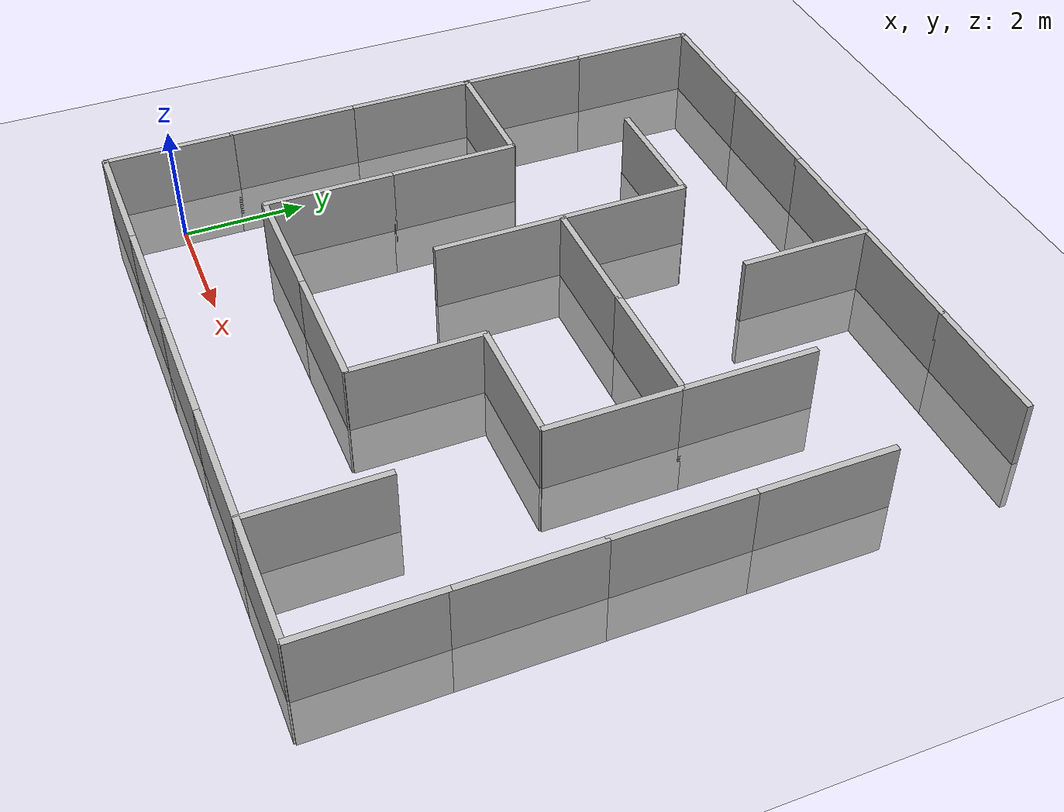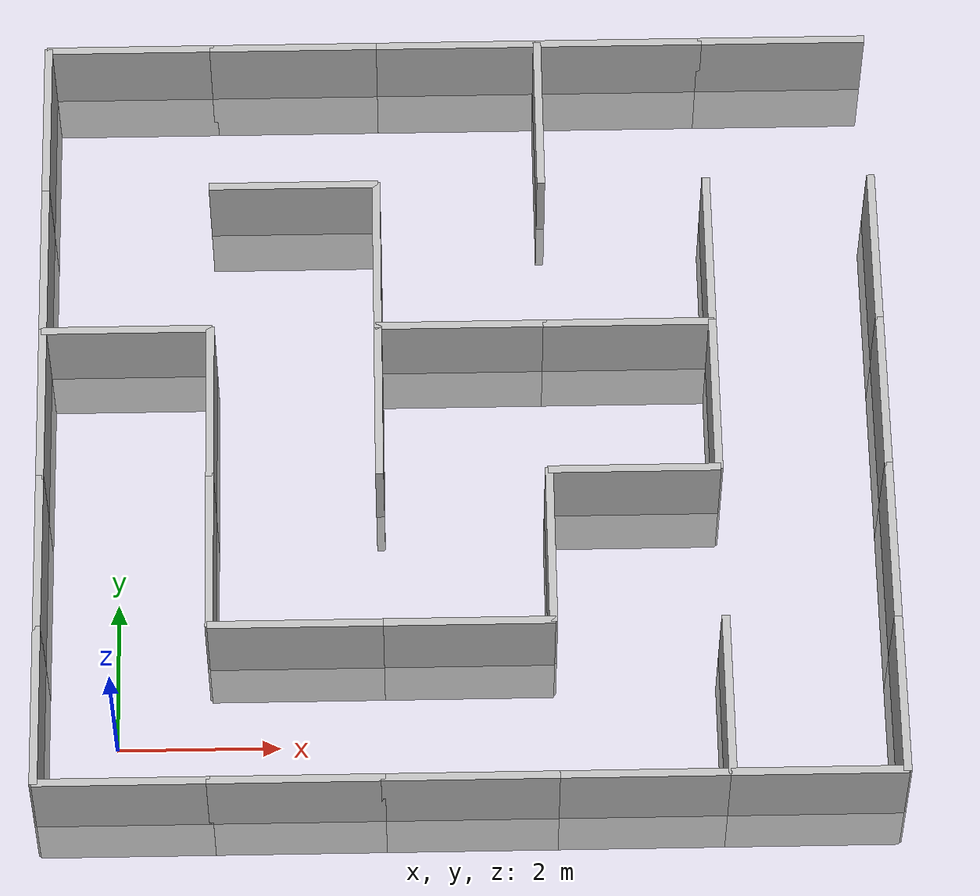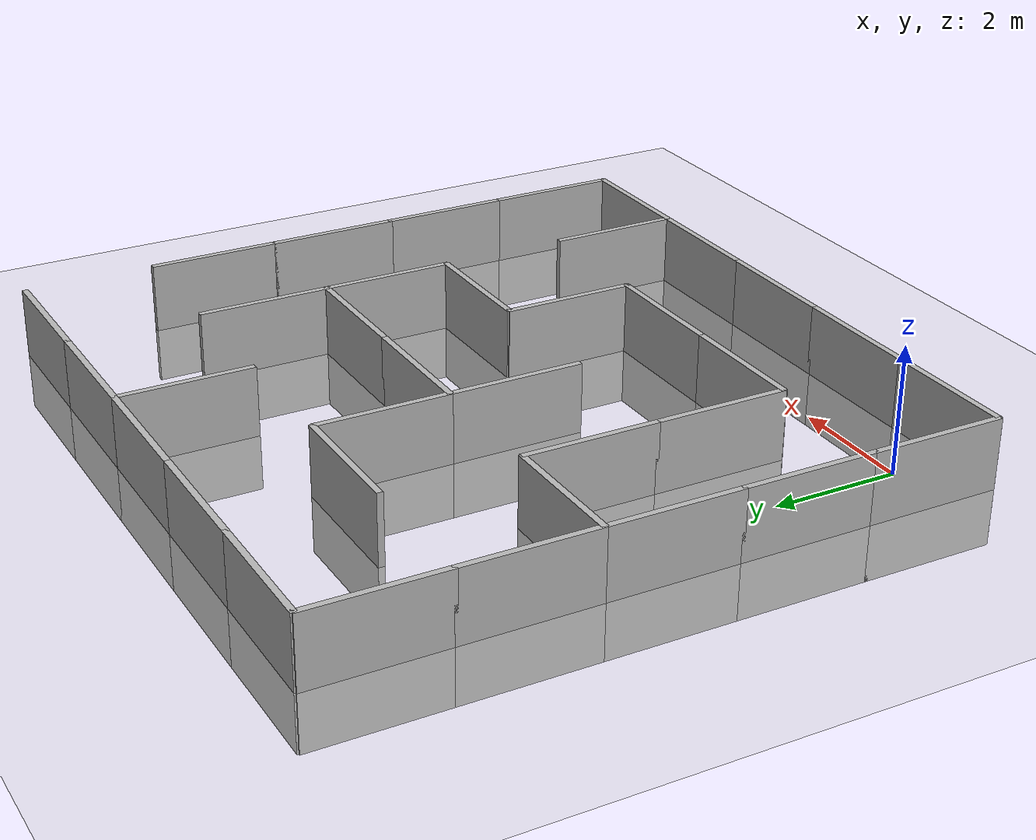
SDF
<sdf version='1.6'>
  <world name='default'>
    <light name='sun' type='directional'>
      <cast_shadows>1</cast_shadows>
      <pose frame=''>0 0 10 0 -0 0</pose>
      <diffuse>0.8 0.8 0.8 1</diffuse>
      <specular>0.1 0.1 0.1 1</specular>
      <attenuation>
        <range>1000</range>
        <constant>0.9</constant>
        <linear>0.01</linear>
        <quadratic>0.001</quadratic>
      </attenuation>
      <direction>-0.5 0.5 -1</direction>
    </light>
    <gravity>0 0 -9.8</gravity>
    <magnetic_field>6e-06 2.3e-05 -4.2e-05</magnetic_field>
    <atmosphere type='adiabatic'/>
    <physics name='default_physics' default='0' type='ode'>
      <max_step_size>0.001</max_step_size>
      <real_time_factor>1</real_time_factor>
      <real_time_update_rate>1000</real_time_update_rate>
    </physics>
    <scene>
      <ambient>0.4 0.4 0.4 1</ambient>
      <background>0.7 0.7 0.7 1</background>
      <shadows>1</shadows>
    </scene>
    <spherical_coordinates>
      <surface_model>EARTH_WGS84</surface_model>
      <latitude_deg>0</latitude_deg>
      <longitude_deg>0</longitude_deg>
      <elevation>0</elevation>
      <heading_deg>0</heading_deg>
    </spherical_coordinates>

    <include>
      <pose frame=''>-1 -1 0.1 0 0 0</pose>
      <uri>model://maze_5x5</uri>
    </include>

    <include>
      <uri>model://ground_plane</uri>
    </include>

    <gui fullscreen='0'>
      <camera name='user_camera'>
        <pose frame=''>-1.26511 -1.08652 18.565 0 1.5218 -0.122452</pose>
        <view_controller>orbit</view_controller>
        <projection_type>perspective</projection_type>
      </camera>
    </gui>
    <audio>
      <device>default</device>
    </audio>
    <wind/>
  </world>

</sdf>

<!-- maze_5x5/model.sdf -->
<sdf version='1.6'>
  <model name='maze'>
    <pose frame=''>0 0 0 0 -0 0</pose>
    <link name='0'>
      <pose frame=''>1.1 0.05 0 0 -0 0</pose>
      <collision name='0_collision'>
        <geometry>
          <box>
            <size>1 1 1</size>
          </box>
        </geometry>
      </collision>
      <visual name='0_visual'>
        <geometry>
          <box>
            <size>2.15 0.1 2</size>
          </box>
        </geometry>
      </visual>
    </link>
    <link name='1'>
      <pose frame=''>0.05 1.1 0 0 -0 0</pose>
      <collision name='1_collision'>
        <geometry>
          <box>
            <size>1 1 1</size>
          </box>
        </geometry>
      </collision>
      <visual name='1_visual'>
        <geometry>
          <box>
            <size>0.1 2.15 2</size>
          </box>
        </geometry>
      </visual>
    </link>
    <link name='2'>
      <pose frame=''>3.2 0.05 0 0 -0 0</pose>
      <collision name='2_collision'>
        <geometry>
          <box>
            <size>1 1 1</size>
          </box>
        </geometry>
      </collision>
      <visual name='2_visual'>
        <geometry>
          <box>
            <size>2.15 0.1 2</size>
          </box>
        </geometry>
      </visual>
    </link>
    <link name='3'>
      <pose frame=''>3.2 2.15 0 0 -0 0</pose>
      <collision name='3_collision'>
        <geometry>
          <box>
            <size>1 1 1</size>
          </box>
        </geometry>
      </collision>
      <visual name='3_visual'>
        <geometry>
          <box>
            <size>2.15 0.1 2</size>
          </box>
        </geometry>
      </visual>
    </link>
    <link name='4'>
      <pose frame=''>5.3 0.05 0 0 -0 0</pose>
      <collision name='4_collision'>
        <geometry>
          <box>
            <size>1 1 1</size>
          </box>
        </geometry>
      </collision>
      <visual name='4_visual'>
        <geometry>
          <box>
            <size>2.15 0.1 2</size>
          </box>
        </geometry>
      </visual>
    </link>
    <link name='5'>
      <pose frame=''>5.3 2.15 0 0 -0 0</pose>
      <collision name='5_collision'>
        <geometry>
          <box>
            <size>1 1 1</size>
          </box>
        </geometry>
      </collision>
      <visual name='5_visual'>
        <geometry>
          <box>
            <size>2.15 0.1 2</size>
          </box>
        </geometry>
      </visual>
    </link>
    <link name='6'>
      <pose frame=''>7.4 0.05 0 0 -0 0</pose>
      <collision name='6_collision'>
        <geometry>
          <box>
            <size>1 1 1</size>
          </box>
        </geometry>
      </collision>
      <visual name='6_visual'>
        <geometry>
          <box>
            <size>2.15 0.1 2</size>
          </box>
        </geometry>
      </visual>
    </link>
    <link name='7'>
      <pose frame=''>8.45 1.1 0 0 -0 0</pose>
      <collision name='7_collision'>
        <geometry>
          <box>
            <size>1 1 1</size>
          </box>
        </geometry>
      </collision>
      <visual name='7_visual'>
        <geometry>
          <box>
            <size>0.1 2.15 2</size>
          </box>
        </geometry>
      </visual>
    </link>
    <link name='8'>
      <pose frame=''>9.5 0.05 0 0 -0 0</pose>
      <collision name='8_collision'>
        <geometry>
          <box>
            <size>1 1 1</size>
          </box>
        </geometry>
      </collision>
      <visual name='8_visual'>
        <geometry>
          <box>
            <size>2.15 0.1 2</size>
          </box>
        </geometry>
      </visual>
    </link>
    <link name='9'>
      <pose frame=''>10.55 1.1 0 0 -0 0</pose>
      <collision name='9_collision'>
        <geometry>
          <box>
            <size>1 1 1</size>
          </box>
        </geometry>
      </collision>
      <visual name='9_visual'>
        <geometry>
          <box>
            <size>0.1 2.15 2</size>
          </box>
        </geometry>
      </visual>
    </link>
    <link name='10'>
      <pose frame=''>2.15 3.2 0 0 -0 0</pose>
      <collision name='10_collision'>
        <geometry>
          <box>
            <size>1 1 1</size>
          </box>
        </geometry>
      </collision>
      <visual name='10_visual'>
        <geometry>
          <box>
            <size>0.1 2.15 2</size>
          </box>
        </geometry>
      </visual>
    </link>
    <link name='11'>
      <pose frame=''>0.05 3.2 0 0 -0 0</pose>
      <collision name='11_collision'>
        <geometry>
          <box>
            <size>1 1 1</size>
          </box>
        </geometry>
      </collision>
      <visual name='11_visual'>
        <geometry>
          <box>
            <size>0.1 2.15 2</size>
          </box>
        </geometry>
      </visual>
    </link>
    <link name='12'>
      <pose frame=''>6.35 3.2 0 0 -0 0</pose>
      <collision name='12_collision'>
        <geometry>
          <box>
            <size>1 1 1</size>
          </box>
        </geometry>
      </collision>
      <visual name='12_visual'>
        <geometry>
          <box>
            <size>0.1 2.15 2</size>
          </box>
        </geometry>
      </visual>
    </link>
    <link name='13'>
      <pose frame=''>7.4 4.25 0 0 -0 0</pose>
      <collision name='13_collision'>
        <geometry>
          <box>
            <size>1 1 1</size>
          </box>
        </geometry>
      </collision>
      <visual name='13_visual'>
        <geometry>
          <box>
            <size>2.15 0.1 2</size>
          </box>
        </geometry>
      </visual>
    </link>
    <link name='14'>
      <pose frame=''>10.55 3.2 0 0 -0 0</pose>
      <collision name='14_collision'>
        <geometry>
          <box>
            <size>1 1 1</size>
          </box>
        </geometry>
      </collision>
      <visual name='14_visual'>
        <geometry>
          <box>
            <size>0.1 2.15 2</size>
          </box>
        </geometry>
      </visual>
    </link>
    <link name='15'>
      <pose frame=''>2.15 5.3 0 0 -0 0</pose>
      <collision name='15_collision'>
        <geometry>
          <box>
            <size>1 1 1</size>
          </box>
        </geometry>
      </collision>
      <visual name='15_visual'>
        <geometry>
          <box>
            <size>0.1 2.15 2</size>
          </box>
        </geometry>
      </visual>
    </link>
    <link name='16'>
      <pose frame=''>1.1 6.35 0 0 -0 0</pose>
      <collision name='16_collision'>
        <geometry>
          <box>
            <size>1 1 1</size>
          </box>
        </geometry>
      </collision>
      <visual name='16_visual'>
        <geometry>
          <box>
            <size>2.15 0.1 2</size>
          </box>
        </geometry>
      </visual>
    </link>
    <link name='17'>
      <pose frame=''>0.05 5.3 0 0 -0 0</pose>
      <collision name='17_collision'>
        <geometry>
          <box>
            <size>1 1 1</size>
          </box>
        </geometry>
      </collision>
      <visual name='17_visual'>
        <geometry>
          <box>
            <size>0.1 2.15 2</size>
          </box>
        </geometry>
      </visual>
    </link>
    <link name='18'>
      <pose frame=''>4.25 5.3 0 0 -0 0</pose>
      <collision name='18_collision'>
        <geometry>
          <box>
            <size>1 1 1</size>
          </box>
        </geometry>
      </collision>
      <visual name='18_visual'>
        <geometry>
          <box>
            <size>0.1 2.15 2</size>
          </box>
        </geometry>
      </visual>
    </link>
    <link name='19'>
      <pose frame=''>5.3 6.35 0 0 -0 0</pose>
      <collision name='19_collision'>
        <geometry>
          <box>
            <size>1 1 1</size>
          </box>
        </geometry>
      </collision>
      <visual name='19_visual'>
        <geometry>
          <box>
            <size>2.15 0.1 2</size>
          </box>
        </geometry>
      </visual>
    </link>
    <link name='20'>
      <pose frame=''>8.45 5.3 0 0 -0 0</pose>
      <collision name='20_collision'>
        <geometry>
          <box>
            <size>1 1 1</size>
          </box>
        </geometry>
      </collision>
      <visual name='20_visual'>
        <geometry>
          <box>
            <size>0.1 2.15 2</size>
          </box>
        </geometry>
      </visual>
    </link>
    <link name='21'>
      <pose frame=''>7.4 6.35 0 0 -0 0</pose>
      <collision name='21_collision'>
        <geometry>
          <box>
            <size>1 1 1</size>
          </box>
        </geometry>
      </collision>
      <visual name='21_visual'>
        <geometry>
          <box>
            <size>2.15 0.1 2</size>
          </box>
        </geometry>
      </visual>
    </link>
    <link name='22'>
      <pose frame=''>10.55 5.3 0 0 -0 0</pose>
      <collision name='22_collision'>
        <geometry>
          <box>
            <size>1 1 1</size>
          </box>
        </geometry>
      </collision>
      <visual name='22_visual'>
        <geometry>
          <box>
            <size>0.1 2.15 2</size>
          </box>
        </geometry>
      </visual>
    </link>
    <link name='23'>
      <pose frame=''>0.05 7.4 0 0 -0 0</pose>
      <collision name='23_collision'>
        <geometry>
          <box>
            <size>1 1 1</size>
          </box>
        </geometry>
      </collision>
      <visual name='23_visual'>
        <geometry>
          <box>
            <size>0.1 2.15 2</size>
          </box>
        </geometry>
      </visual>
    </link>
    <link name='24'>
      <pose frame=''>4.25 7.4 0 0 -0 0</pose>
      <collision name='24_collision'>
        <geometry>
          <box>
            <size>1 1 1</size>
          </box>
        </geometry>
      </collision>
      <visual name='24_visual'>
        <geometry>
          <box>
            <size>0.1 2.15 2</size>
          </box>
        </geometry>
      </visual>
    </link>
    <link name='25'>
      <pose frame=''>3.2 8.45 0 0 -0 0</pose>
      <collision name='25_collision'>
        <geometry>
          <box>
            <size>1 1 1</size>
          </box>
        </geometry>
      </collision>
      <visual name='25_visual'>
        <geometry>
          <box>
            <size>2.15 0.1 2</size>
          </box>
        </geometry>
      </visual>
    </link>
    <link name='26'>
      <pose frame=''>8.45 7.4 0 0 -0 0</pose>
      <collision name='26_collision'>
        <geometry>
          <box>
            <size>1 1 1</size>
          </box>
        </geometry>
      </collision>
      <visual name='26_visual'>
        <geometry>
          <box>
            <size>0.1 2.15 2</size>
          </box>
        </geometry>
      </visual>
    </link>
    <link name='27'>
      <pose frame=''>10.55 7.4 0 0 -0 0</pose>
      <collision name='27_collision'>
        <geometry>
          <box>
            <size>1 1 1</size>
          </box>
        </geometry>
      </collision>
      <visual name='27_visual'>
        <geometry>
          <box>
            <size>0.1 2.15 2</size>
          </box>
        </geometry>
      </visual>
    </link>
    <link name='28'>
      <pose frame=''>1.1 10.55 0 0 -0 0</pose>
      <collision name='28_collision'>
        <geometry>
          <box>
            <size>1 1 1</size>
          </box>
        </geometry>
      </collision>
      <visual name='28_visual'>
        <geometry>
          <box>
            <size>2.15 0.1 2</size>
          </box>
        </geometry>
      </visual>
    </link>
    <link name='29'>
      <pose frame=''>0.05 9.5 0 0 -0 0</pose>
      <collision name='29_collision'>
        <geometry>
          <box>
            <size>1 1 1</size>
          </box>
        </geometry>
      </collision>
      <visual name='29_visual'>
        <geometry>
          <box>
            <size>0.1 2.15 2</size>
          </box>
        </geometry>
      </visual>
    </link>
    <link name='30'>
      <pose frame=''>3.2 10.55 0 0 -0 0</pose>
      <collision name='30_collision'>
        <geometry>
          <box>
            <size>1 1 1</size>
          </box>
        </geometry>
      </collision>
      <visual name='30_visual'>
        <geometry>
          <box>
            <size>2.15 0.1 2</size>
          </box>
        </geometry>
      </visual>
    </link>
    <link name='31'>
      <pose frame=''>6.35 9.5 0 0 -0 0</pose>
      <collision name='31_collision'>
        <geometry>
          <box>
            <size>1 1 1</size>
          </box>
        </geometry>
      </collision>
      <visual name='31_visual'>
        <geometry>
          <box>
            <size>0.1 2.15 2</size>
          </box>
        </geometry>
      </visual>
    </link>
    <link name='32'>
      <pose frame=''>5.3 10.55 0 0 -0 0</pose>
      <collision name='32_collision'>
        <geometry>
          <box>
            <size>1 1 1</size>
          </box>
        </geometry>
      </collision>
      <visual name='32_visual'>
        <geometry>
          <box>
            <size>2.15 0.1 2</size>
          </box>
        </geometry>
      </visual>
    </link>
    <link name='33'>
      <pose frame=''>7.4 10.55 0 0 -0 0</pose>
      <collision name='33_collision'>
        <geometry>
          <box>
            <size>1 1 1</size>
          </box>
        </geometry>
      </collision>
      <visual name='33_visual'>
        <geometry>
          <box>
            <size>2.15 0.1 2</size>
          </box>
        </geometry>
      </visual>
    </link>
    <link name='35'>
      <pose frame=''>9.5 10.55 0 0 -0 0</pose>
      <collision name='35_collision'>
        <geometry>
          <box>
            <size>1 1 1</size>
          </box>
        </geometry>
      </collision>
      <visual name='35_visual'>
        <geometry>
          <box>
            <size>2.15 0.1 2</size>
          </box>
        </geometry>
      </visual>
    </link>
  </model>
</sdf>
